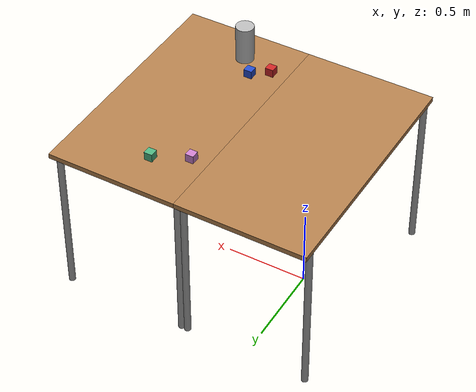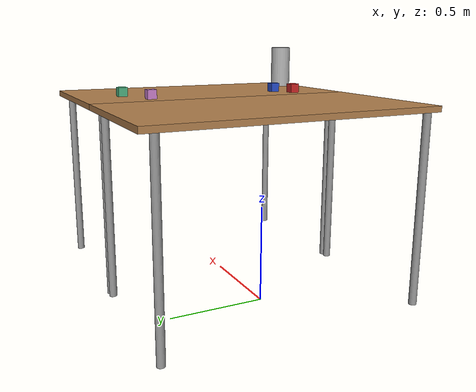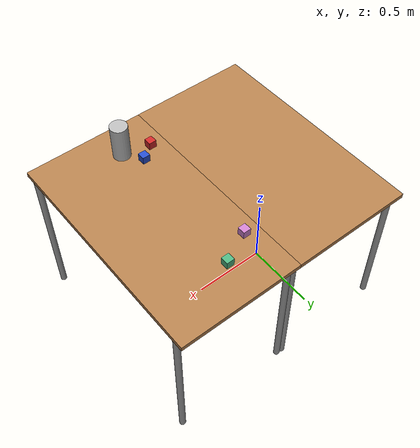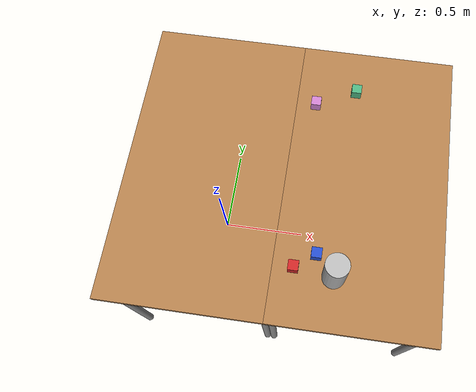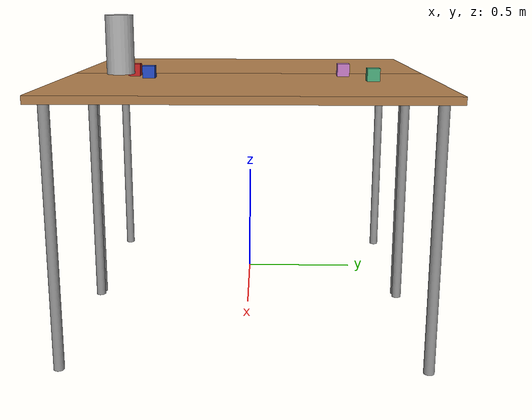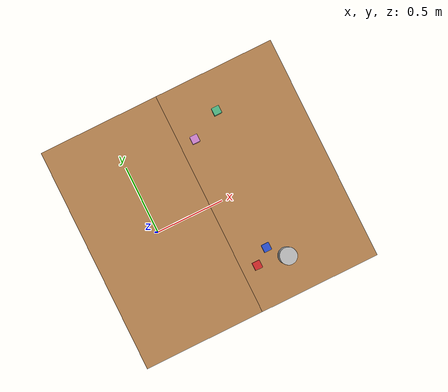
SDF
<sdf version="1.7">
 <world name="default">
  <light name="sun" type="directional">
   <pose>0 0 10 0 -0 0</pose>
   <diffuse>0.8 0.8 0.8 1</diffuse>
   <specular>0.2 0.2 0.2 1</specular>
   <attenuation>
    <range>1000</range>
    <constant>0.9</constant>
    <linear>0.01</linear>
    <quadratic>0.001</quadratic>
   </attenuation>
   <direction>-0.5 0.1 -0.9</direction>
   <spot><inner_angle>0</inner_angle><outer_angle>0</outer_angle><falloff>0</falloff></spot>
  </light>
  <gravity>0 0 -9.8</gravity>
  <magnetic_field>6e-06 2.3e-05 -4.2e-05</magnetic_field>
  <atmosphere type="adiabatic"/>
  <physics type="ode">
   <max_step_size>0.001</max_step_size>
   <real_time_factor>1</real_time_factor>
   <real_time_update_rate>1000</real_time_update_rate>
  </physics>
  <scene><ambient>0.4 0.4 0.4 1</ambient><background>0.7 0.7 0.7 1</background><shadows>1</shadows></scene>
  <audio><device>default</device></audio>
  <spherical_coordinates>
   <surface_model>EARTH_WGS84</surface_model>
   <latitude_deg>0</latitude_deg>
   <longitude_deg>0</longitude_deg>
   <elevation>0</elevation>
   <heading_deg>0</heading_deg>
  </spherical_coordinates>
  <model name="table">
   <static>1</static>
   <link name="link">
    <collision name="surface">
     <pose>0 0 1 0 -0 0</pose>
     <geometry><box><size>1.5 0.8 0.03</size></box></geometry>
     <surface><friction><ode><mu>0.6</mu><mu2>0.6</mu2></ode></friction></surface>
    </collision>
    <visual name="visual1">
     <pose>0 0 1 0 -0 0</pose>
     <geometry><box><size>1.5 0.8 0.03</size></box></geometry>
     <material>
      <script><uri>file://media/materials/scripts/gazebo.material</uri><name>Gazebo/Wood</name></script>
     </material>
    </visual>
    <collision name="front_left_leg">
     <pose>0.68 0.38 0.5 0 -0 0</pose>
     <geometry><cylinder><radius>0.02</radius><length>1</length></cylinder></geometry>
    </collision>
    <visual name="front_left_leg">
     <pose>0.68 0.38 0.5 0 -0 0</pose>
     <geometry><cylinder><radius>0.02</radius><length>1</length></cylinder></geometry>
     <material>
      <script><uri>file://media/materials/scripts/gazebo.material</uri><name>Gazebo/Grey</name></script>
     </material>
    </visual>
    <collision name="front_right_leg">
     <pose>0.68 -0.38 0.5 0 -0 0</pose>
     <geometry><cylinder><radius>0.02</radius><length>1</length></cylinder></geometry>
    </collision>
    <visual name="front_right_leg">
     <pose>0.68 -0.38 0.5 0 -0 0</pose>
     <geometry><cylinder><radius>0.02</radius><length>1</length></cylinder></geometry>
     <material>
      <script><uri>file://media/materials/scripts/gazebo.material</uri><name>Gazebo/Grey</name></script>
     </material>
    </visual>
    <collision name="back_right_leg">
     <pose>-0.68 -0.38 0.5 0 -0 0</pose>
     <geometry><cylinder><radius>0.02</radius><length>1</length></cylinder></geometry>
    </collision>
    <visual name="back_right_leg">
     <pose>-0.68 -0.38 0.5 0 -0 0</pose>
     <geometry><cylinder><radius>0.02</radius><length>1</length></cylinder></geometry>
     <material>
      <script><uri>file://media/materials/scripts/gazebo.material</uri><name>Gazebo/Grey</name></script>
     </material>
    </visual>
    <collision name="back_left_leg">
     <pose>-0.68 0.38 0.5 0 -0 0</pose>
     <geometry><cylinder><radius>0.02</radius><length>1</length></cylinder></geometry>
    </collision>
    <visual name="back_left_leg">
     <pose>-0.68 0.38 0.5 0 -0 0</pose>
     <geometry><cylinder><radius>0.02</radius><length>1</length></cylinder></geometry>
     <material>
      <script><uri>file://media/materials/scripts/gazebo.material</uri><name>Gazebo/Grey</name></script>
     </material>
    </visual>
   </link>
   <pose>0 0 0 0 -0 1.5708</pose>
  </model>
  <model name="table_0">
   <static>1</static>
   <link name="link">
    <collision name="surface">
     <pose>0 0 1 0 -0 0</pose>
     <geometry><box><size>1.5 0.8 0.03</size></box></geometry>
     <surface><friction><ode><mu>0.6</mu><mu2>0.6</mu2></ode></friction></surface>
    </collision>
    <visual name="visual1">
     <pose>0 0 1 0 -0 0</pose>
     <geometry><box><size>1.5 0.8 0.03</size></box></geometry>
     <material>
      <script><uri>file://media/materials/scripts/gazebo.material</uri><name>Gazebo/Wood</name></script>
     </material>
    </visual>
    <collision name="front_left_leg">
     <pose>0.68 0.38 0.5 0 -0 0</pose>
     <geometry><cylinder><radius>0.02</radius><length>1</length></cylinder></geometry>
    </collision>
    <visual name="front_left_leg">
     <pose>0.68 0.38 0.5 0 -0 0</pose>
     <geometry><cylinder><radius>0.02</radius><length>1</length></cylinder></geometry>
     <material>
      <script><uri>file://media/materials/scripts/gazebo.material</uri><name>Gazebo/Grey</name></script>
     </material>
    </visual>
    <collision name="front_right_leg">
     <pose>0.68 -0.38 0.5 0 -0 0</pose>
     <geometry><cylinder><radius>0.02</radius><length>1</length></cylinder></geometry>
    </collision>
    <visual name="front_right_leg">
     <pose>0.68 -0.38 0.5 0 -0 0</pose>
     <geometry><cylinder><radius>0.02</radius><length>1</length></cylinder></geometry>
     <material>
      <script><uri>file://media/materials/scripts/gazebo.material</uri><name>Gazebo/Grey</name></script>
     </material>
    </visual>
    <collision name="back_right_leg">
     <pose>-0.68 -0.38 0.5 0 -0 0</pose>
     <geometry><cylinder><radius>0.02</radius><length>1</length></cylinder></geometry>
    </collision>
    <visual name="back_right_leg">
     <pose>-0.68 -0.38 0.5 0 -0 0</pose>
     <geometry><cylinder><radius>0.02</radius><length>1</length></cylinder></geometry>
     <material>
      <script><uri>file://media/materials/scripts/gazebo.material</uri><name>Gazebo/Grey</name></script>
     </material>
    </visual>
    <collision name="back_left_leg">
     <pose>-0.68 0.38 0.5 0 -0 0</pose>
     <geometry><cylinder><radius>0.02</radius><length>1</length></cylinder></geometry>
    </collision>
    <visual name="back_left_leg">
     <pose>-0.68 0.38 0.5 0 -0 0</pose>
     <geometry><cylinder><radius>0.02</radius><length>1</length></cylinder></geometry>
     <material>
      <script><uri>file://media/materials/scripts/gazebo.material</uri><name>Gazebo/Grey</name></script>
     </material>
    </visual>
   </link>
   <pose>0.8 0 0 0 -0 1.5708</pose>
  </model>
  <model name="blue_box">
   <link name="link">
    <inertial>
     <mass>1</mass>
     <inertia>
      <ixx>0.166667</ixx>
      <ixy>0</ixy>
      <ixz>0</ixz>
      <iyy>0.166667</iyy>
      <iyz>0</iyz>
      <izz>0.166667</izz>
     </inertia>
    </inertial>
    <visual name="visual">
     <geometry><box><size>0.05 0.05 0.05</size></box></geometry>
     <material>
      <script><name>Gazebo/Blue</name><uri>file://media/materials/scripts/gazebo.material</uri></script>
      <shader type="pixel"><normal_map>__default__</normal_map></shader>
      <ambient>0 0 1 1</ambient>
      <diffuse>0 0 1 1</diffuse>
      <specular>0.1 0.1 0.1 1</specular>
      <emissive>0 0 0 1</emissive>
     </material>
    </visual>
    <collision name="collision">
     <geometry><box><size>0.05 0.05 0.05</size></box></geometry>
     <surface>
      <friction>
       <ode><mu>1</mu><mu2>1</mu2><fdir1>0 0 0</fdir1><slip1>0</slip1><slip2>0</slip2></ode>
       <torsional>
        <coefficient>1</coefficient>
        <patch_radius>0</patch_radius>
        <surface_radius>0</surface_radius>
        <use_patch_radius>1</use_patch_radius>
        <ode><slip>0</slip></ode>
       </torsional>
      </friction>
      <bounce><restitution_coefficient>0</restitution_coefficient><threshold>1e+06</threshold></bounce>
      <contact>
       <collide_without_contact>0</collide_without_contact>
       <collide_without_contact_bitmask>1</collide_without_contact_bitmask>
       <collide_bitmask>1</collide_bitmask>
       <ode>
        <soft_cfm>0</soft_cfm>
        <soft_erp>0.2</soft_erp>
        <kp>1e+13</kp>
        <kd>1</kd>
        <max_vel>0.01</max_vel>
        <min_depth>0</min_depth>
       </ode>
       <bullet>
        <split_impulse>1</split_impulse>
        <split_impulse_penetration_threshold>-0.01</split_impulse_penetration_threshold>
        <soft_cfm>0</soft_cfm>
        <soft_erp>0.2</soft_erp>
        <kp>1e+13</kp>
        <kd>1</kd>
       </bullet>
      </contact>
     </surface>
    </collision>
   </link>
   <static>0</static>
   <pose>0.6 -0.4 1.04 5e-06 1.2e-05 2e-05</pose>
  </model>
  <model name="red_box">
   <link name="link">
    <inertial>
     <mass>1</mass>
     <inertia>
      <ixx>0.166667</ixx>
      <ixy>0</ixy>
      <ixz>0</ixz>
      <iyy>0.166667</iyy>
      <iyz>0</iyz>
      <izz>0.166667</izz>
     </inertia>
    </inertial>
    <visual name="visual">
     <geometry><box><size>0.05 0.05 0.05</size></box></geometry>
     <material>
      <script><name>Gazebo/Red</name><uri>file://media/materials/scripts/gazebo.material</uri></script>
      <shader type="pixel"><normal_map>__default__</normal_map></shader>
      <ambient>1 0 0 1</ambient>
      <diffuse>1 0 0 1</diffuse>
      <specular>0.1 0.1 0.1 1</specular>
      <emissive>0 0 0 1</emissive>
     </material>
    </visual>
    <collision name="collision">
     <geometry><box><size>0.05 0.05 0.05</size></box></geometry>
     <surface>
      <friction>
       <ode><mu>1</mu><mu2>1</mu2><fdir1>0 0 0</fdir1><slip1>0</slip1><slip2>0</slip2></ode>
       <torsional>
        <coefficient>1</coefficient>
        <patch_radius>0</patch_radius>
        <surface_radius>0</surface_radius>
        <use_patch_radius>1</use_patch_radius>
        <ode><slip>0</slip></ode>
       </torsional>
      </friction>
      <bounce><restitution_coefficient>0</restitution_coefficient><threshold>1e+06</threshold></bounce>
      <contact>
       <collide_without_contact>0</collide_without_contact>
       <collide_without_contact_bitmask>1</collide_without_contact_bitmask>
       <collide_bitmask>1</collide_bitmask>
       <ode>
        <soft_cfm>0</soft_cfm>
        <soft_erp>0.2</soft_erp>
        <kp>1e+13</kp>
        <kd>1</kd>
        <max_vel>0.01</max_vel>
        <min_depth>0</min_depth>
       </ode>
       <bullet>
        <split_impulse>1</split_impulse>
        <split_impulse_penetration_threshold>-0.01</split_impulse_penetration_threshold>
        <soft_cfm>0</soft_cfm>
        <soft_erp>0.2</soft_erp>
        <kp>1e+13</kp>
        <kd>1</kd>
       </bullet>
      </contact>
     </surface>
    </collision>
   </link>
   <static>0</static>
   <pose>0.500092 -0.474829 1.04 3e-06 2e-06 -0.000132</pose>
  </model>
  <model name="box_2">
   <link name="link">
    <inertial>
     <mass>1</mass>
     <inertia>
      <ixx>0.166667</ixx>
      <ixy>0</ixy>
      <ixz>0</ixz>
      <iyy>0.166667</iyy>
      <iyz>0</iyz>
      <izz>0.166667</izz>
     </inertia>
    </inertial>
    <visual name="visual">
     <geometry><box><size>0.05 0.05 0.05</size></box></geometry>
     <material>
      <script><name>Gazebo/Gray</name><uri>file://media/materials/scripts/gazebo.material</uri></script>
      <shader type="pixel"><normal_map>__default__</normal_map></shader>
      <ambient>0.3 0.7 0.5 1</ambient>
      <diffuse>0.3 0.7 0.5 1</diffuse>
      <specular>0.1 0.1 0.1 1</specular>
      <emissive>0 0 0 1</emissive>
     </material>
    </visual>
    <collision name="collision">
     <geometry><box><size>0.05 0.05 0.05</size></box></geometry>
     <surface>
      <friction>
       <ode><mu>1</mu><mu2>1</mu2><fdir1>0 0 0</fdir1><slip1>0</slip1><slip2>0</slip2></ode>
       <torsional>
        <coefficient>1</coefficient>
        <patch_radius>0</patch_radius>
        <surface_radius>0</surface_radius>
        <use_patch_radius>1</use_patch_radius>
        <ode><slip>0</slip></ode>
       </torsional>
      </friction>
      <bounce><restitution_coefficient>0</restitution_coefficient><threshold>1e+06</threshold></bounce>
      <contact>
       <collide_without_contact>0</collide_without_contact>
       <collide_without_contact_bitmask>1</collide_without_contact_bitmask>
       <collide_bitmask>1</collide_bitmask>
       <ode>
        <soft_cfm>0</soft_cfm>
        <soft_erp>0.2</soft_erp>
        <kp>1e+13</kp>
        <kd>1</kd>
        <max_vel>0.01</max_vel>
        <min_depth>0</min_depth>
       </ode>
       <bullet>
        <split_impulse>1</split_impulse>
        <split_impulse_penetration_threshold>-0.01</split_impulse_penetration_threshold>
        <soft_cfm>0</soft_cfm>
        <soft_erp>0.2</soft_erp>
        <kp>1e+13</kp>
        <kd>1</kd>
       </bullet>
      </contact>
     </surface>
    </collision>
   </link>
   <static>0</static>
   <pose>0.7 0.500001 1.04 -9e-06 2e-06 3.7e-05</pose>
  </model>
  <model name="box_4">
   <link name="link">
    <inertial>
     <mass>1</mass>
     <inertia>
      <ixx>0.166667</ixx>
      <ixy>0</ixy>
      <ixz>0</ixz>
      <iyy>0.166667</iyy>
      <iyz>0</iyz>
      <izz>0.166667</izz>
     </inertia>
    </inertial>
    <visual name="visual">
     <geometry><box><size>0.05 0.05 0.05</size></box></geometry>
     <material>
      <script><name>Gazebo/Gray</name><uri>file://media/materials/scripts/gazebo.material</uri></script>
      <shader type="pixel"><normal_map>__default__</normal_map></shader>
      <ambient>0.8 0.5 0.8 1</ambient>
      <diffuse>0.8 0.5 0.8 1</diffuse>
      <specular>0.1 0.1 0.1 1</specular>
      <emissive>0 0 0 1</emissive>
     </material>
    </visual>
    <collision name="collision">
     <geometry><box><size>0.05 0.05 0.05</size></box></geometry>
     <surface>
      <friction>
       <ode><mu>1</mu><mu2>1</mu2><fdir1>0 0 0</fdir1><slip1>0</slip1><slip2>0</slip2></ode>
       <torsional>
        <coefficient>1</coefficient>
        <patch_radius>0</patch_radius>
        <surface_radius>0</surface_radius>
        <use_patch_radius>1</use_patch_radius>
        <ode><slip>0</slip></ode>
       </torsional>
      </friction>
      <bounce><restitution_coefficient>0</restitution_coefficient><threshold>1e+06</threshold></bounce>
      <contact>
       <collide_without_contact>0</collide_without_contact>
       <collide_without_contact_bitmask>1</collide_without_contact_bitmask>
       <collide_bitmask>1</collide_bitmask>
       <ode>
        <soft_cfm>0</soft_cfm>
        <soft_erp>0.2</soft_erp>
        <kp>1e+13</kp>
        <kd>1</kd>
        <max_vel>0.01</max_vel>
        <min_depth>0</min_depth>
       </ode>
       <bullet>
        <split_impulse>1</split_impulse>
        <split_impulse_penetration_threshold>-0.01</split_impulse_penetration_threshold>
        <soft_cfm>0</soft_cfm>
        <soft_erp>0.2</soft_erp>
        <kp>1e+13</kp>
        <kd>1</kd>
       </bullet>
      </contact>
     </surface>
    </collision>
   </link>
   <static>0</static>
   <pose>0.5 0.399999 1.04 -4e-06 3.2e-05 2.8e-05</pose>
  </model>
  <model name="beer">
   <link name="link">
    <pose>0 0 0.115 0 -0 0</pose>
    <inertial>
     <mass>0.39</mass>
     <inertia><ixx>0.00058</ixx><ixy>0</ixy><ixz>0</ixz><iyy>0.00058</iyy><iyz>0</iyz><izz>0.00019</izz></inertia>
    </inertial>
    <collision name="collision">
     <geometry><cylinder><radius>0.055</radius><length>0.23</length></cylinder></geometry>
    </collision>
    <visual name="visual">
     <geometry><cylinder><radius>0.055</radius><length>0.23</length></cylinder></geometry>
     <material>
      <script>
       <uri>model://beer/materials/scripts</uri>
       <uri>model://beer/materials/textures</uri>
       <name>Beer/Diffuse</name>
      </script>
     </material>
    </visual>
   </link>
   <pose>0.69 -0.5 1.04 0 -0 0</pose>
  </model>
 </world>
</sdf>
